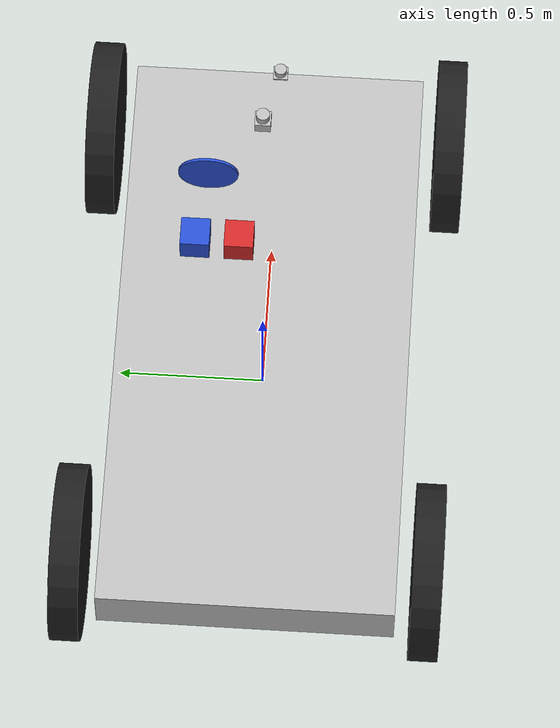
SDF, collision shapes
<?xml version="1.0" ?>
<sdf version="1.4">
    <model name="car">
        <link name="chassis">
            <pose>0 0 0.3 0 0 0</pose>
            <inertial>
                <mass>100.0</mass>
            </inertial>
            <collision name="collision">
                <geometry>
                    <box><size>2.0 1.0 0.2</size></box>
                </geometry>
            </collision>
            <visual name="visual">
                <geometry>
                    <mesh>
                        <uri>file://models/utility_cart/testcar.dae</uri>
                    </mesh>
                </geometry>
            </visual>
        </link>
        <link name="front_left_wheel">
            <pose>0.8 0.6 0.3 0 1.5707 1.5707</pose>
            <collision name="collision">
                <geometry>
                    <cylinder><radius>0.3</radius><length>0.1</length></cylinder>
                </geometry>
            </collision>
            <visual name="visual">
                <geometry>
                    <cylinder><radius>0.3</radius><length>0.1</length></cylinder>
                </geometry>
                <material>
                    <script>
                        <uri>file://media/materials/scripts/gazebo.material</uri>
                        <name>Gazebo/Black</name>
                    </script>
                </material>
            </visual>
        </link>
        <link name="front_right_wheel">
            <pose>0.8 -0.6 0.3 0 1.5707 1.5707</pose>
            <collision name="collision">
                <geometry>
                    <cylinder><radius>0.3</radius><length>0.1</length></cylinder>
                </geometry>
            </collision>
            <visual name="visual">
                <geometry>
                    <cylinder><radius>0.3</radius><length>0.1</length></cylinder>
                </geometry>
                <material>
                    <script>
                        <uri>file://media/materials/scripts/gazebo.material</uri>
                        <name>Gazebo/Black</name>
                    </script>
                </material>
            </visual>
        </link>
        <link name="back_right_wheel">
            <pose>-0.8 -0.6 0.3 0 1.5707 1.5707</pose>
            <collision name="collision">
                <geometry>
                    <cylinder><radius>0.3</radius><length>0.1</length></cylinder>
                </geometry>
            </collision>
            <visual name="visual">
                <geometry>
                    <cylinder><radius>0.3</radius><length>0.1</length></cylinder>
                </geometry>
                <material>
                    <script>
                        <uri>file://media/materials/scripts/gazebo.material</uri>
                        <name>Gazebo/Black</name>
                    </script>
                </material>
            </visual>
        </link>
        <link name="back_left_wheel">
            <pose>-0.8 0.6 0.3 0 1.5707 1.5707</pose>
            <collision name="collision">
                <geometry>
                    <cylinder><radius>0.3</radius><length>0.1</length></cylinder>
                </geometry>
            </collision>
            <visual name="visual">
                <geometry>
                    <cylinder><radius>0.3</radius><length>0.1</length></cylinder>
                </geometry>
                <material>
                    <script>
                        <uri>file://media/materials/scripts/gazebo.material</uri>
                        <name>Gazebo/Black</name>
                    </script>
                </material>
            </visual>
        </link>
        <link name="gas_pedal">
            <pose>0.3 0.1 0.5 0 0 0</pose>
            <collision name="collision">
                <geometry>
                    <box><size>0.1 0.1 0.1</size></box>
                </geometry>
            </collision>
            <visual name="visual">
                <geometry>
                    <box><size>0.1 0.1 0.1</size></box>
                </geometry>
                <material>
                    <script>
                        <uri>file://media/materials/scripts/gazebo.material</uri>
                        <name>Gazebo/Red</name>
                    </script>
                </material>
            </visual>
        </link>
        <link name="brake_pedal">
            <pose>0.3 0.25 0.5 0 0 0</pose>
            <collision name="collision">
                <geometry>
                    <box><size>0.1 0.1 0.1</size></box>
                </geometry>
            </collision>
            <visual name="visual">
                <geometry>
                    <box><size>0.1 0.1 0.1</size></box>
                </geometry>
                <material>
                    <script>
                        <uri>file://media/materials/scripts/gazebo.material</uri>
                        <name>Gazebo/Blue</name>
                    </script>
                </material>
            </visual>
        </link>
        <link name="steering_wheel">
            <pose>0.3 0.2 1.0 0 1.5707 0</pose>
            <collision name="collision">
                <geometry>
                    <cylinder><radius>0.1</radius><length>0.01</length></cylinder>
                </geometry>
            </collision>
            <visual name="visual">
                <geometry>
                    <cylinder><radius>0.1</radius><length>0.01</length></cylinder>
                </geometry>
                <material>
                    <script>
                        <uri>file://media/materials/scripts/gazebo.material</uri>
                        <name>Gazebo/Blue</name>
                    </script>
                </material>
            </visual>
        </link>
        <joint type="prismatic" name="gas_joint">
            <parent>chassis</parent>
            <child>gas_pedal</child>
            <axis>
                <xyz>1 0 0</xyz>
                <limit><lower>0</lower><upper>0.2</upper></limit>
            </axis>
        </joint>
        <joint type="prismatic" name="brake_joint">
            <parent>chassis</parent>
            <child>brake_pedal</child>
            <axis>
                <xyz>1 0 0</xyz>
                <limit><lower>0</lower><upper>0.2</upper></limit>
            </axis>
        </joint>
        <joint type="revolute" name="steering_joint">
            <parent>chassis</parent>
            <child>steering_wheel</child>
            <axis>
                <xyz>1 0 0</xyz>
                <limit><lower>-7.853</lower><upper>7.853</upper></limit>
            </axis>
        </joint>
        <joint type="revolute2" name="front_left_joint">
            <parent>chassis</parent>
            <child>front_left_wheel</child>
            <axis>
                <xyz>0 0 1</xyz>
                <limit>
                    <lower>0</lower>
                    <upper>0</upper>
                </limit>
            </axis>
            <axis2>
                <xyz>0 1 0</xyz>
            </axis2>
            <physics>
                <ode>
                    <limit><cfm>0.0</cfm><erp>0.9</erp></limit>
                </ode>
            </physics>
        </joint>
        <joint type="revolute2" name="front_right_joint">
            <parent>chassis</parent>
            <child>front_right_wheel</child>
            <axis><xyz>0 0 1</xyz>
                <limit><lower>0</lower><upper>0</upper></limit>
            </axis>
            <axis2>
                <xyz>0 1 0</xyz>
            </axis2>
            <physics>
                <ode>
                    <limit><cfm>0.0</cfm><erp>0.9</erp></limit>
                </ode>
            </physics>
        </joint>
        <joint type="revolute2" name="back_right_joint">
            <parent>chassis</parent>
            <child>back_right_wheel</child>
            <axis><xyz>0 0 1</xyz>
                <limit><lower>0</lower><upper>0</upper></limit>
            </axis>
            <axis2>
                <xyz>0 1 0</xyz>
            </axis2>
            <physics>
                <ode>
                    <limit><cfm>0.0</cfm><erp>0.9</erp></limit>
                </ode>
            </physics>
        </joint>
        <joint type="revolute2" name="back_left_joint">
            <parent>chassis</parent>
            <child>back_left_wheel</child>
            <axis><xyz>0 0 1</xyz>
                <limit><lower>0</lower><upper>0</upper></limit>
            </axis>
            <axis2>
                <xyz>0 1 0</xyz>
            </axis2>
            <physics>
                <ode>
                    <limit><cfm>0.0</cfm><erp>0.9</erp></limit>
                </ode>
            </physics>
        </joint>

        <link name="car_laser">
            <pose>1.0 0 0.4 0 0 0</pose>
            <inertial>
                <mass>0.1</mass>
            </inertial>
            <visual name="visual">
                <geometry>
                    <mesh>
                        <uri>model://hokuyo/meshes/hokuyo.dae</uri>
                    </mesh>
                </geometry>
            </visual>
            <collision name="collision-base">
                <pose>0 0 -0.0145 0 0 0</pose>
                <geometry>
                    <box>
                        <size>0.05 0.05 0.041</size>
                    </box>
                </geometry>
            </collision>
            <collision name="collision-top">
                <pose>0 0 0.0205 0 0 0</pose>
                <geometry>
                    <cylinder>
                        <radius>0.021</radius>
                        <length>0.029</length>
                    </cylinder>
                </geometry>
            </collision>
            <sensor name="laser" type="ray">
                <pose>0.01 0 0.0175 0 -0 0</pose>
                <ray>
                    <scan>
                        <horizontal>
                            <samples>640</samples>
                            <resolution>1</resolution>
                            <min_angle>-1.39626</min_angle>
                            <max_angle>1.39626</max_angle>
                        </horizontal>
                    </scan>
                    <range>
                        <min>0.08</min>
                        <max>10</max>
                        <resolution>0.01</resolution>
                    </range>
                </ray>
                <plugin name="laser_car" filename="build/liblaser_car.so" />
                <always_on>1</always_on>
                <update_rate>30</update_rate>
                <visualize>true</visualize>
            </sensor>
        </link>
        <joint name="car_laser_joint" type="revolute">
            <child>car_laser</child>
            <parent>chassis</parent>
            <axis>
                <xyz>0 0 1</xyz>
                <limit>
                    <upper>0</upper>
                    <lower>0</lower>
                </limit>
            </axis>
        </joint>

        <link name="car_gps">
            <pose>0.0 0.0 2.0 0 0 0</pose>
            <inertial>
                <mass>0.1</mass>
            </inertial>
            <visual name="visual">
                <geometry>
                    <mesh>
                        <uri>model://hokuyo/meshes/hokuyo.dae</uri>
                    </mesh>
                </geometry>
            </visual>
            <collision name="collision-base">
                <pose>0 0 -0.0145 0 0 0</pose>
                <geometry>
                    <box>
                        <size>0.05 0.05 0.041</size>
                    </box>
                </geometry>
            </collision>
            <collision name="collision-top">
                <pose>0 0 0.0205 0 0 0</pose>
                <geometry>
                    <cylinder>
                        <radius>0.021</radius>
                        <length>0.029</length>
                    </cylinder>
                </geometry>
            </collision>
            <sensor name="gps" type="gps">
                <pose>0.01 0 0.0175 0 0 0</pose>
                <plugin name="car_gps" filename="build/libcar_gps.so" />
                <always_on>1</always_on>
                <update_rate>30</update_rate>
                <visualize>true</visualize>
            </sensor>
        </link>
        <joint name="car_gps_joint" type="revolute">
            <child>car_gps</child>
            <parent>chassis</parent>
            <axis>
                <xyz>0 0 1</xyz>
                <limit>
                    <upper>0</upper>
                    <lower>0</lower>
                </limit>
            </axis>
        </joint>

        <plugin filename="build/libVehiclePlugin.so" name="VehiclePlugin">
            <!-- Joints for each wheel -->
            <front_left>front_left_joint</front_left>
            <front_right>front_right_joint</front_right>
            <back_left>back_left_joint</back_left>
            <back_right>back_right_joint</back_right>
            <!-- Joint which controls the gas -->
            <gas>gas_joint</gas>
            <!-- Joint which controls the gas -->
            <brake>brake_joint</brake>
            <!-- Joint which controls the steering -->
            <steering>steering_joint</steering>
            <!-- Power is multiplied by "gas" to determine force applied to wheels -->
            <front_power>10</front_power>
            <rear_power>10</rear_power>
            <!-- The angle range the front tires can turn for steering, in radians -->
            <tire_angle_range>0.5</tire_angle_range>
            <!-- Maximum speed for the car in meters/second -->
            <max_speed>10</max_speed>
            <!-- Factor for the down-force applied as the car travels faster -->
            <!-- A larger number increases the down force -->
            <aero_load>0.1</aero_load>
        </plugin>
    </model>

</sdf>
